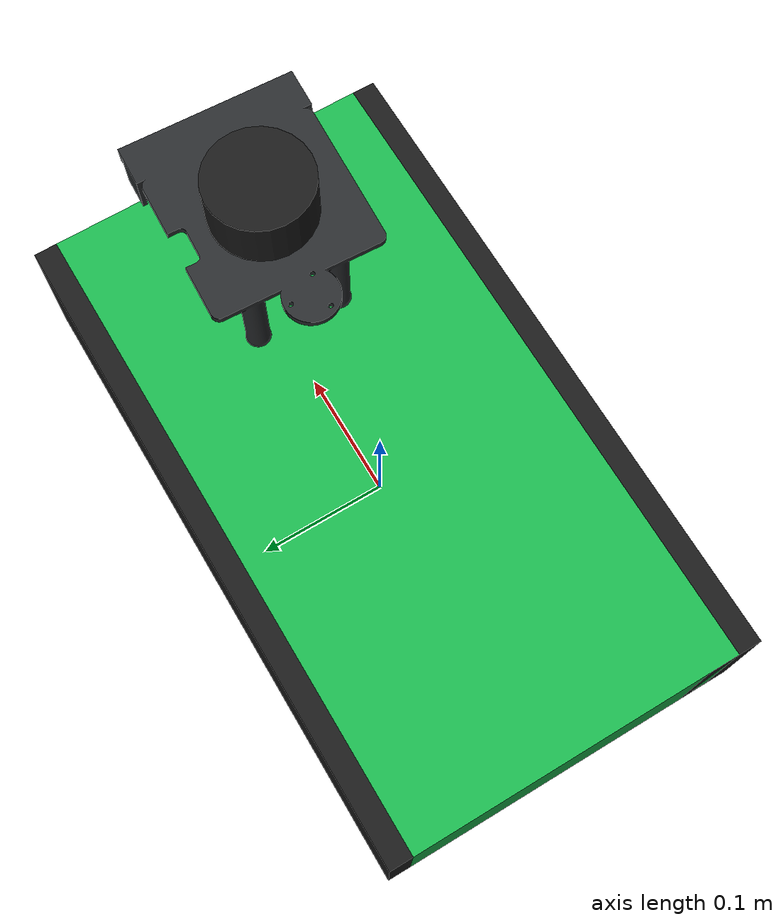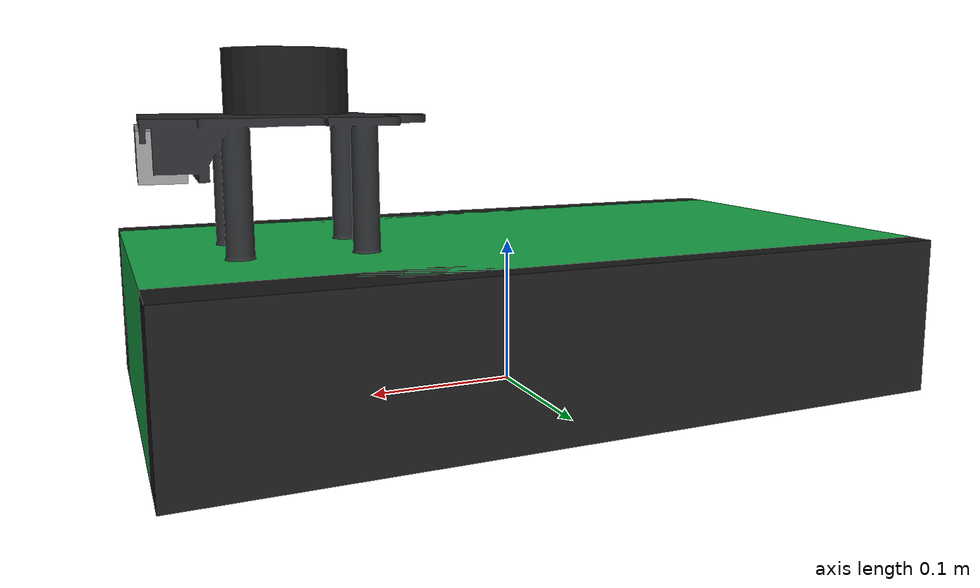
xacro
<?xml version="1.0" ?>
<robot name="jupiter_rover" xmlns:xacro="http://www.ros.org/wiki/xacro">

  <xacro:arg name="deck_x"    default="0.152"/>
  <xacro:arg name="deck_y"    default="0.0"/>
  <xacro:arg name="deck_z"    default="0.159"/>
  <xacro:arg name="deck_yaw"  default="-0.04677"/>
  <xacro:arg name="lidar_yaw" default="3.14159265"/>

  <xacro:property name="base_z"   value="0.02567"/>
  <xacro:property name="deck_x"   value="$(arg deck_x)"/>
  <xacro:property name="deck_y"   value="$(arg deck_y)"/>
  <xacro:property name="deck_z"   value="$(arg deck_z)"/>
  <xacro:property name="deck_yaw" value="$(arg deck_yaw)"/>
  <!-- 데크 원점 기준 센서 오프셋 (rover.urdf 확정값: 라이다 z 0.185 − 0.159, 카메라 (0.080, 0.0475, 0.143 − 0.159)) -->
  <xacro:property name="lidar_dz" value="0.026"/>
  <xacro:property name="cam_dx"   value="0.080"/>
  <xacro:property name="cam_dy"   value="0.0475"/>
  <xacro:property name="cam_dz"   value="-0.016"/>

  <material name="green"><color rgba="0.1 0.7 0.3 1.0"/></material>
  <material name="black"><color rgba="0.1 0.1 0.1 1.0"/></material>
  <material name="grey"><color rgba="0.6 0.6 0.6 1.0"/></material>
  <material name="dark_grey"><color rgba="0.3 0.3 0.3 1.0"/></material>
  <material name="petg"><color rgba="0.16 0.17 0.18 1.0"/></material>

  <link name="base_footprint"/>

  <joint name="base_joint" type="fixed">
    <parent link="base_footprint"/>
    <child link="base_link"/>
    <origin xyz="0 0 ${base_z}" rpy="0 0 0"/>
  </joint>

  <!-- 차체: WT-600 본체 (트랙 제외 폭 0.25) -->
  <link name="base_link">
    <visual>
      <origin xyz="0 0 0.027" rpy="0 0 0"/>
      <geometry><box size="0.50 0.25 0.105"/></geometry>
      <material name="green"/>
    </visual>
    <collision>
      <origin xyz="0 0 0.027" rpy="0 0 0"/>
      <geometry><box size="0.50 0.25 0.105"/></geometry>
    </collision>
    <inertial>
      <mass value="8.5"/>
      <origin xyz="0 0 0.027" rpy="0 0 0"/>
      <inertia ixx="0.0521" ixy="0.0" ixz="0.0" iyy="0.1849" iyz="0.0" izz="0.2214"/>
    </inertial>
  </link>

  <xacro:macro name="track" params="side y">
    <link name="${side}_track">
      <visual><origin xyz="0 0 0" rpy="0 0 0"/><geometry><box size="0.50 0.04 0.105"/></geometry><material name="black"/></visual>
      <collision><origin xyz="0 0 0" rpy="0 0 0"/><geometry><box size="0.50 0.04 0.105"/></geometry></collision>
      <inertial>
        <mass value="0.6"/>
        <origin xyz="0 0 0" rpy="0 0 0"/>
        <inertia ixx="0.00063" ixy="0.0" ixz="0.0" iyy="0.01305" iyz="0.0" izz="0.01258"/>
      </inertial>
    </link>
    <joint name="${side}_track_joint" type="continuous">
      <parent link="base_link"/><child link="${side}_track"/>
      <origin xyz="0 ${y} 0.027" rpy="0 0 0"/><axis xyz="0 1 0"/>
    </joint>
  </xacro:macro>
  <xacro:track side="left"  y="0.1225"/>
  <xacro:track side="right" y="-0.1225"/>

  <!-- 보드 IMU (ICM-20948, 상판 3.5° 기울기 상속) — 자이로 무반응으로 미융합, TF 만 유지 -->
  <link name="imu_link"/>
  <joint name="imu_joint" type="fixed">
    <parent link="base_link"/><child link="imu_link"/>
    <origin xyz="0 0 0.09" rpy="0 -0.0611 0"/>
  </joint>

  <!-- 센서 데크: 원점 = 라이다 마운트 중심 · 판 하면. 시각화 = FUSED_ROVER 메시(mm → m, 같은 원점) -->
  <link name="sensor_deck_link">
    <visual>
      <origin xyz="0 0 0" rpy="0 0 0"/>
      <geometry><mesh filename="package://rover_description/meshes/sensor_deck.stl" scale="0.001 0.001 0.001"/></geometry>
      <material name="petg"/>
    </visual>
  </link>
  <joint name="sensor_deck_joint" type="fixed">
    <parent link="base_link"/><child link="sensor_deck_link"/>
    <origin xyz="${deck_x} ${deck_y} ${deck_z}" rpy="0 0 ${deck_yaw}"/>
  </joint>

  <!-- 라이다 RPLidar S2L — lidar_link 원점 = 스캔면 중심. 방향 = 라이다 yaw + 데크 yaw (stuck_monitor.py LIDAR_YAW 와 한 쌍) -->
  <link name="lidar_link">
    <visual>
      <origin xyz="0 0 0" rpy="0 0 0"/>
      <geometry><cylinder radius="0.0385" length="0.0398"/></geometry>
      <material name="black"/>
    </visual>
  </link>
  <joint name="lidar_joint" type="fixed">
    <parent link="base_link"/><child link="lidar_link"/>
    <origin xyz="${deck_x} ${deck_y} ${deck_z + lidar_dz}" rpy="0 0 ${$(arg lidar_yaw) + deck_yaw}"/>
  </joint>

  <!-- 카메라 RealSense D455f — camera_link = 좌IR이미저. 위치 = 데크 원점 + 데크 yaw 로 돌린 (cam_dx, cam_dy) -->
  <link name="camera_link">
    <visual>
      <origin xyz="-0.003 -0.0475 0" rpy="0 0 0"/>
      <geometry><box size="0.026 0.124 0.029"/></geometry>
      <material name="grey"/>
    </visual>
  </link>
  <joint name="camera_joint" type="fixed">
    <parent link="base_link"/><child link="camera_link"/>
    <origin xyz="${deck_x + cam_dx*cos(deck_yaw) - cam_dy*sin(deck_yaw)} ${deck_y + cam_dx*sin(deck_yaw) + cam_dy*cos(deck_yaw)} ${deck_z + cam_dz}" rpy="0 0 ${deck_yaw}"/>
  </joint>

</robot>
